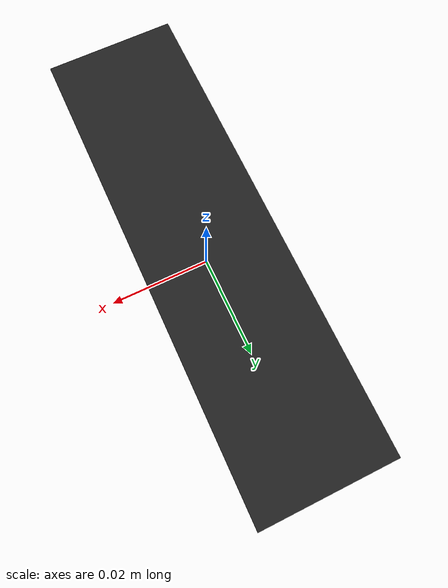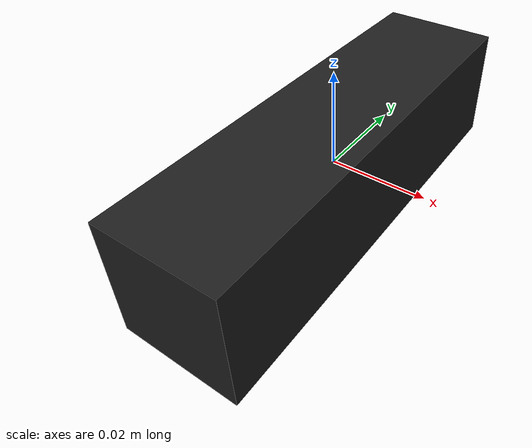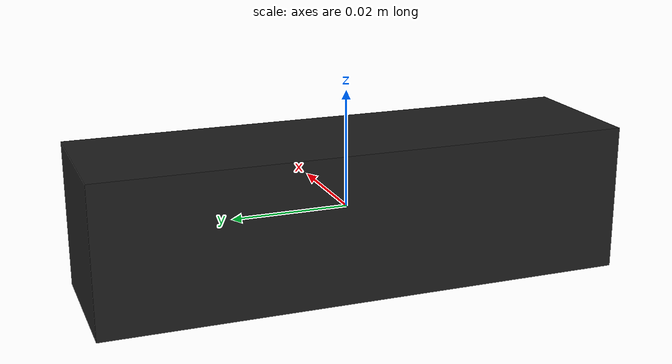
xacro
<?xml version="1.0"?>
<robot xmlns:xacro="http://www.ros.org/wiki/xacro" name="realsense_camera">

    <gazebo reference="camera_link">
        <selfCollide>true</selfCollide>
        <material>Gazebo/Black</material>
    </gazebo>

    <!-- Fixed world -->
    <link name="world" />
    <joint name="world_joint" type="fixed">
        <parent link="world" />
        <child link="camera_link" />
        <origin rpy="0.0 0.0 0.0" xyz="0.0 0.0 0.0" />
    </joint>

    <!-- Create the link (or like item) -->
    <link name="camera_link">
        <visual>
            <origin xyz="0 0 0" rpy="-1.5708 0 -1.5708" />
            <geometry>
                <box size="0.09 0.025 0.025" />
            </geometry>
            <material name="black" />
        </visual>
        <collision>
            <origin xyz="0 0 0" rpy="-1.5708 0 -1.5708" />
            <geometry>
                <box size="0.08 0.02 0.02" />
            </geometry>
        </collision>
        <inertial>
            <mass value="0.1" />
            <inertia ixx="0.000348958333333" ixy="0" ixz="0" iyy="0.000348958333333" iyz="0"
                izz="3.125e-05" />
        </inertial>
    </link>

    <!-- Gazebo reference for depth camera -->
   <gazebo reference="camera_link">
        <sensor type="depth" name="camera_depth_sensor">
            <always_on>true</always_on>
            <update_rate>20.0</update_rate>
            <camera name="realsense_camera">
                <horizontal_fov>1.047198</horizontal_fov>
                <image>
                    <width>640</width>
                    <height>480</height>
                    <format>R8G8B8</format>
                </image>
                <clip>
                    <near>0.05</near>
                    <far>3.0</far>
                </clip>
            </camera>
            <plugin name="camera_plugin" filename="libgazebo_ros_openni_kinect.so">
                <baseline>0.2</baseline>
                <alwaysOn>true</alwaysOn>
                <updateRate>0.0</updateRate>
                <cameraName>camera_ir</cameraName>
                <imageTopicName>/camera/color/image_raw</imageTopicName>
                <cameraInfoTopicName>/camera/color/camera_info</cameraInfoTopicName>
                <depthImageTopicName>/camera/depth/image_raw</depthImageTopicName>
                <depthImageCameraInfoTopicName>/camera/depth/camera_info</depthImageCameraInfoTopicName>
                <pointCloudTopicName>/camera/depth/points</pointCloudTopicName>
                <frameName>camera_link</frameName>
                <pointCloudCutoff>0.5</pointCloudCutoff>
                <pointCloudCutoffMax>3.0</pointCloudCutoffMax>
                <distortionK1>0</distortionK1>
                <distortionK2>0</distortionK2>
                <distortionK3>0</distortionK3>
                <distortionT1>0</distortionT1>
                <distortionT2>0</distortionT2>
                <CxPrime>0</CxPrime>
                <Cx>0</Cx>
                <Cy>0</Cy>
                <focalLength>0</focalLength>
                <hackBaseline>0</hackBaseline>
            </plugin>
        </sensor>
    </gazebo>
</robot>
